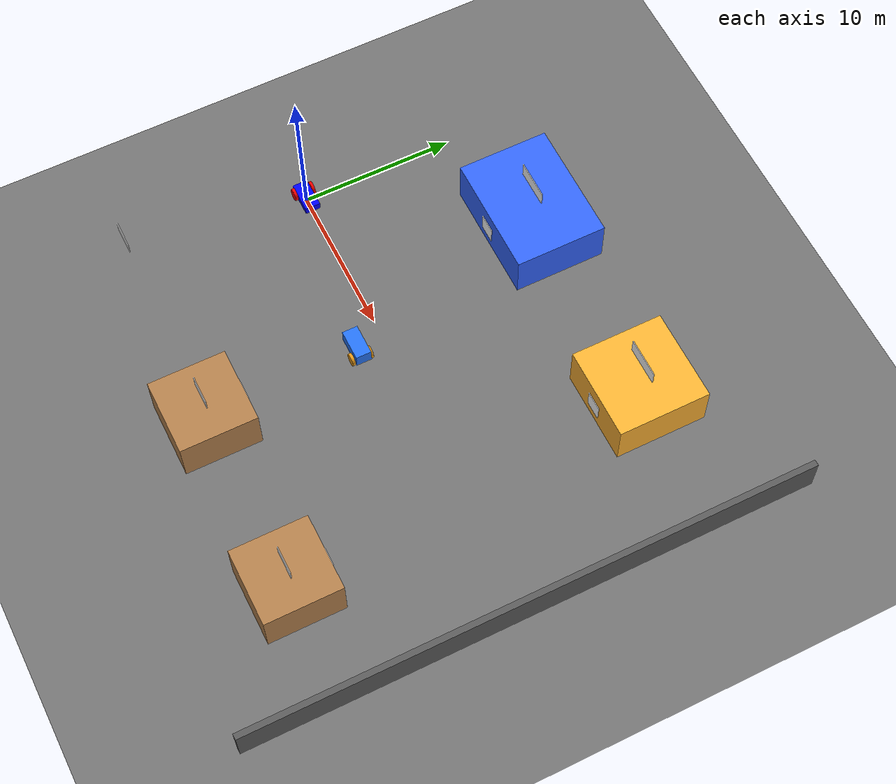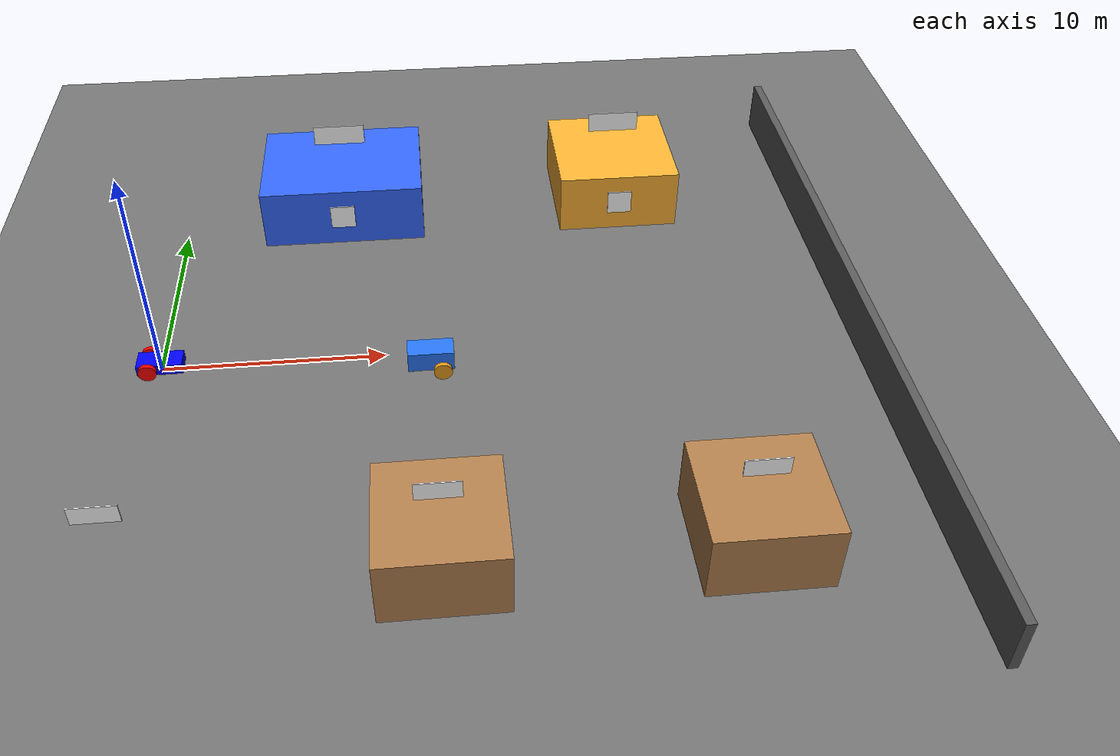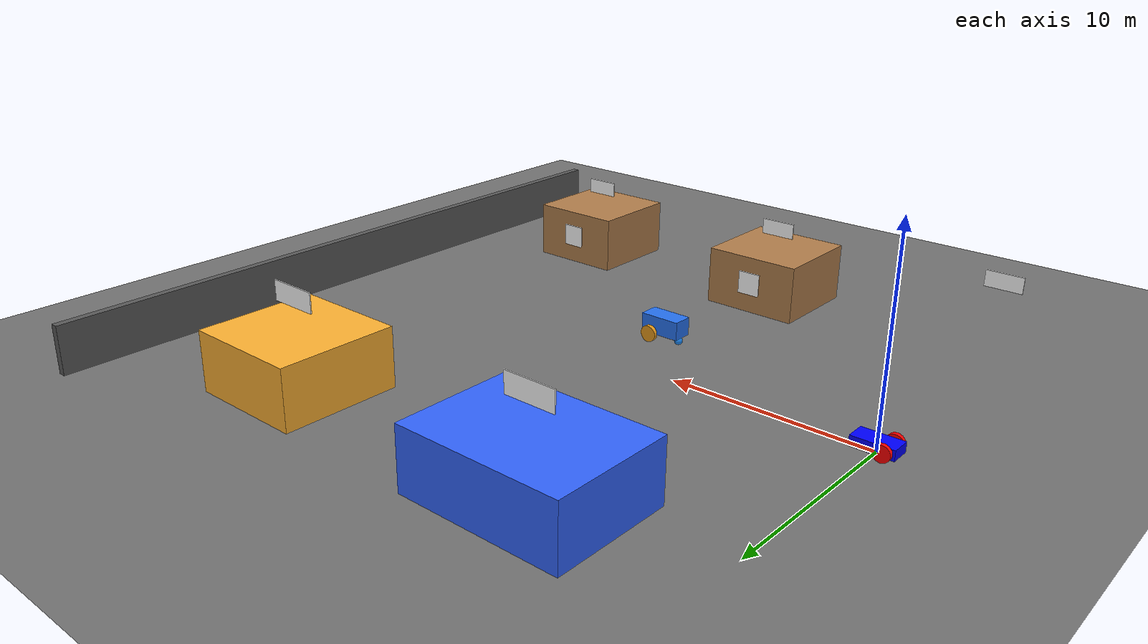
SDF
<sdf version="1.7">
 <world name="town_qr_world">
  <model name="ground_plane">
   <static>true</static>
   <link name="link">
    <collision name="collision">
     <geometry><plane><normal>0 0 1</normal><size>80 80</size></plane></geometry>
    </collision>
    <visual name="visual">
     <geometry><plane><normal>0 0 1</normal><size>80 80</size></plane></geometry>
     <material><ambient>0.45 0.45 0.45 1</ambient><diffuse>0.45 0.45 0.45 1</diffuse></material>
    </visual>
   </link>
  </model>
  <model name="east_wall">
   <static>true</static>
   <pose>31.5 0 1.25 0 0 0</pose>
   <link name="link">
    <collision name="collision"><geometry><box><size>0.4 37 2.5</size></box></geometry></collision>
    <visual name="visual">
     <geometry><box><size>0.4 37 2.5</size></box></geometry>
     <material><ambient>0.35 0.35 0.35 1</ambient><diffuse>0.35 0.35 0.35 1</diffuse></material>
    </visual>
   </link>
  </model>
  <model name="supermarket">
   <static>true</static>
   <pose>8 12 1.5 0 0 0</pose>
   <link name="link">
    <collision name="collision"><geometry><box><size>8 6 3</size></box></geometry></collision>
    <visual name="visual">
     <geometry><box><size>8 6 3</size></box></geometry>
     <material><ambient>0.2 0.4 1.0 1</ambient><diffuse>0.2 0.4 1.0 1</diffuse></material>
    </visual>
   </link>
  </model>
  <model name="restaurant">
   <static>true</static>
   <pose>22 12 1.5 0 0 0</pose>
   <link name="link">
    <collision name="collision"><geometry><box><size>6 6 3</size></box></geometry></collision>
    <visual name="visual">
     <geometry><box><size>6 6 3</size></box></geometry>
     <material><ambient>1.0 0.7 0.2 1</ambient><diffuse>1.0 0.7 0.2 1</diffuse></material>
    </visual>
   </link>
  </model>
  <model name="house_4">
   <static>true</static>
   <pose>12 -12 1.5 0 0 0</pose>
   <link name="link">
    <collision name="collision"><geometry><box><size>5 5 3</size></box></geometry></collision>
    <visual name="visual">
     <geometry><box><size>5 5 3</size></box></geometry>
     <material><ambient>0.7 0.5 0.3 1</ambient><diffuse>0.7 0.5 0.3 1</diffuse></material>
    </visual>
   </link>
  </model>
  <model name="house_5">
   <static>true</static>
   <pose>24 -12 1.5 0 0 0</pose>
   <link name="link">
    <collision name="collision"><geometry><box><size>5 5 3</size></box></geometry></collision>
    <visual name="visual">
     <geometry><box><size>5 5 3</size></box></geometry>
     <material><ambient>0.7 0.5 0.3 1</ambient><diffuse>0.7 0.5 0.3 1</diffuse></material>
    </visual>
   </link>
  </model>
  <model name="qr_supermarket">
   <static>true</static>
   <pose>8 8.9 1.6 0 0 0</pose>
   <link name="link">
    <visual name="qr_visual">
     <geometry><box><size>1.2 0.05 1.2</size></box></geometry>
     <material>
      <ambient>1 1 1 1</ambient>
      <diffuse>1 1 1 1</diffuse>
      <pbr>
       <metal><albedo_map>file:///home/adammanasfi/AMR_PROJECT/qr_codes/supermarket.png</albedo_map></metal>
      </pbr>
     </material>
    </visual>
   </link>
  </model>
  <model name="qr_restaurant">
   <static>true</static>
   <pose>22 8.9 1.6 0 0 0</pose>
   <link name="link">
    <visual name="qr_visual">
     <geometry><box><size>1.2 0.05 1.2</size></box></geometry>
     <material>
      <ambient>1 1 1 1</ambient>
      <diffuse>1 1 1 1</diffuse>
      <pbr>
       <metal><albedo_map>file:///home/adammanasfi/AMR_PROJECT/qr_codes/restaurant.png</albedo_map></metal>
      </pbr>
     </material>
    </visual>
   </link>
  </model>
  <model name="qr_house_4">
   <static>true</static>
   <pose>12 -9.4 1.6 0 0 3.14159</pose>
   <link name="link">
    <visual name="qr_visual">
     <geometry><box><size>1.2 0.05 1.2</size></box></geometry>
     <material>
      <ambient>1 1 1 1</ambient>
      <diffuse>1 1 1 1</diffuse>
      <pbr><metal><albedo_map>file:///home/adammanasfi/AMR_PROJECT/qr_codes/house_4.png</albedo_map></metal></pbr>
     </material>
    </visual>
   </link>
  </model>
  <model name="qr_house_5">
   <static>true</static>
   <pose>24 -9.4 1.6 0 0 3.14159</pose>
   <link name="link">
    <visual name="qr_visual">
     <geometry><box><size>1.2 0.05 1.2</size></box></geometry>
     <material>
      <ambient>1 1 1 1</ambient>
      <diffuse>1 1 1 1</diffuse>
      <pbr><metal><albedo_map>file:///home/adammanasfi/AMR_PROJECT/qr_codes/house_5.png</albedo_map></metal></pbr>
     </material>
    </visual>
   </link>
  </model>
  <model name="vehicle_blue" canonical_link="chassis">
   <frame name="lidar_frame" attached_to="chassis"/>
   <link name="chassis">
    <pose relative_to="__model__">0 0 0.4 0 0 0</pose>
    <inertial>
     <mass>1.14395</mass>
     <inertia>
      <ixx>0.095329</ixx>
      <ixy>0</ixy>
      <ixz>0</ixz>
      <iyy>0.381317</iyy>
      <iyz>0</iyz>
      <izz>0.476646</izz>
     </inertia>
    </inertial>
    <visual name="visual">
     <geometry><box><size>2.0 1.0 0.5</size></box></geometry>
     <material><ambient>0 0 1 1</ambient><diffuse>0 0 1 1</diffuse></material>
    </visual>
    <collision name="collision"><geometry><box><size>2.0 1.0 0.4</size></box></geometry></collision>
    <sensor name="gpu_lidar" type="gpu_lidar">
     <pose>0 0 0.5 0 0 0</pose>
     <topic>scan</topic>
     <update_rate>30</update_rate>
     <ray>
      <scan>
       <horizontal>
        <samples>640</samples>
        <resolution>1</resolution>
        <min_angle>-3.14159</min_angle>
        <max_angle>3.14159</max_angle>
       </horizontal>
       <vertical>
        <samples>1</samples>
        <resolution>1</resolution>
        <min_angle>0</min_angle>
        <max_angle>0</max_angle>
       </vertical>
      </scan>
      <range><min>0.1</min><max>12.0</max><resolution>0.05</resolution></range>
     </ray>
     <always_on>true</always_on>
     <visualize>true</visualize>
    </sensor>
    <sensor name="imu_sensor" type="imu">
     <always_on>true</always_on>
     <update_rate>50</update_rate>
     <visualize>true</visualize>
     <topic>imu</topic>
    </sensor>
    <sensor name="front_cam" type="camera">
     <pose>0.8 0 0.5 0 0 0</pose>
     <topic>front_cam/image</topic>
     <always_on>true</always_on>
     <update_rate>30</update_rate>
     <visualize>true</visualize>
     <camera>
      <horizontal_fov>1.05</horizontal_fov>
      <image><width>640</width><height>480</height><format>R8G8B8</format></image>
      <clip><near>0.1</near><far>50</far></clip>
     </camera>
    </sensor>
   </link>
   <link name="left_wheel">
    <pose relative_to="chassis">-0.5 0.6 0 -1.5707 0 0</pose>
    <inertial>
     <mass>1</mass>
     <inertia><ixx>0.043333</ixx><ixy>0</ixy><ixz>0</ixz><iyy>0.043333</iyy><iyz>0</iyz><izz>0.08</izz></inertia>
    </inertial>
    <visual name="visual">
     <geometry><cylinder><radius>0.4</radius><length>0.2</length></cylinder></geometry>
     <material><ambient>1 0 0 1</ambient><diffuse>1 0 0 1</diffuse></material>
    </visual>
    <collision name="collision">
     <geometry><cylinder><radius>0.4</radius><length>0.2</length></cylinder></geometry>
    </collision>
   </link>
   <link name="right_wheel">
    <pose relative_to="chassis">-0.5 -0.6 0 -1.5707 0 0</pose>
    <inertial>
     <mass>1</mass>
     <inertia><ixx>0.043333</ixx><ixy>0</ixy><ixz>0</ixz><iyy>0.043333</iyy><iyz>0</iyz><izz>0.08</izz></inertia>
    </inertial>
    <visual name="visual">
     <geometry><cylinder><radius>0.4</radius><length>0.2</length></cylinder></geometry>
     <material><ambient>1 0 0 1</ambient><diffuse>1 0 0 1</diffuse></material>
    </visual>
    <collision name="collision">
     <geometry><cylinder><radius>0.4</radius><length>0.2</length></cylinder></geometry>
    </collision>
   </link>
   <frame name="caster_frame" attached_to="chassis"><pose>0.8 0 -0.2 0 0 0</pose></frame>
   <link name="caster">
    <pose relative_to="caster_frame">0 0 0 0 0 0</pose>
    <inertial>
     <mass>1</mass>
     <inertia><ixx>0.016</ixx><ixy>0</ixy><ixz>0</ixz><iyy>0.016</iyy><iyz>0</iyz><izz>0.016</izz></inertia>
    </inertial>
    <visual name="visual">
     <geometry><sphere><radius>0.2</radius></sphere></geometry>
     <material><ambient>0 1 0 1</ambient><diffuse>0 1 0 1</diffuse></material>
    </visual>
    <collision name="collision"><geometry><sphere><radius>0.2</radius></sphere></geometry></collision>
   </link>
   <joint name="left_wheel_joint" type="revolute">
    <parent>chassis</parent>
    <child>left_wheel</child>
    <axis>
     <xyz expressed_in="__model__">0 1 0</xyz>
     <limit><lower>-1.79769e+308</lower><upper>1.79769e+308</upper></limit>
    </axis>
   </joint>
   <joint name="right_wheel_joint" type="revolute">
    <parent>chassis</parent>
    <child>right_wheel</child>
    <axis>
     <xyz expressed_in="__model__">0 1 0</xyz>
     <limit><lower>-1.79769e+308</lower><upper>1.79769e+308</upper></limit>
    </axis>
   </joint>
   <joint name="caster_wheel" type="ball"><parent>chassis</parent><child>caster</child></joint>
   <plugin filename="gz-sim-pose-publisher-system" name="gz::sim::systems::PosePublisher">
    <publish_link_pose>true</publish_link_pose>
    <publish_sensor_pose>true</publish_sensor_pose>
    <publish_nested_model_pose>true</publish_nested_model_pose>
    <use_pose_vector_msg>false</use_pose_vector_msg>
   </plugin>
   <plugin filename="gz-sim-diff-drive-system" name="gz::sim::systems::DiffDrive">
    <left_joint>left_wheel_joint</left_joint>
    <right_joint>right_wheel_joint</right_joint>
    <wheel_separation>1.2</wheel_separation>
    <wheel_radius>0.4</wheel_radius>
    <odom_publish_frequency>10</odom_publish_frequency>
    <topic>cmd_vel</topic>
    <odom_topic>odom</odom_topic>
    <frame_id>odom</frame_id>
    <child_frame_id>vehicle_blue/chassis</child_frame_id>
   </plugin>
  </model>
  <model name="traffic_bot_2" canonical_link="chassis">
   <pose>12 -2 0 0 0 3.14159</pose>
   <link name="chassis">
    <pose relative_to="__model__">0 0 1.2 0 0 0</pose>
    <inertial>
     <mass>1.0</mass>
     <inertia><ixx>0.09</ixx><ixy>0</ixy><ixz>0</ixz><iyy>0.38</iyy><iyz>0</iyz><izz>0.47</izz></inertia>
    </inertial>
    <visual name="visual">
     <pose>0 0 0.45 0 0 0</pose>
     <geometry><box><size>2.0 1.0 0.9</size></box></geometry>
     <material><ambient>0.15 0.45 0.95 1</ambient><diffuse>0.15 0.45 0.95 1</diffuse></material>
    </visual>
    <collision name="collision">
     <pose>0 0 0.4 0 0 0</pose>
     <geometry><box><size>2.0 1.0 0.8</size></box></geometry>
    </collision>
   </link>
   <link name="left_wheel">
    <pose relative_to="chassis">-0.5 0.6 0 -1.5707 0 0</pose>
    <inertial>
     <mass>1</mass>
     <inertia><ixx>0.043333</ixx><ixy>0</ixy><ixz>0</ixz><iyy>0.043333</iyy><iyz>0</iyz><izz>0.08</izz></inertia>
    </inertial>
    <visual name="visual">
     <geometry><cylinder><radius>0.4</radius><length>0.2</length></cylinder></geometry>
     <material><ambient>0.9 0.6 0.1 1</ambient><diffuse>0.9 0.6 0.1 1</diffuse></material>
    </visual>
    <collision name="collision">
     <geometry><cylinder><radius>0.4</radius><length>0.2</length></cylinder></geometry>
    </collision>
   </link>
   <link name="right_wheel">
    <pose relative_to="chassis">-0.5 -0.6 0 -1.5707 0 0</pose>
    <inertial>
     <mass>1</mass>
     <inertia><ixx>0.043333</ixx><ixy>0</ixy><ixz>0</ixz><iyy>0.043333</iyy><iyz>0</iyz><izz>0.08</izz></inertia>
    </inertial>
    <visual name="visual">
     <geometry><cylinder><radius>0.4</radius><length>0.2</length></cylinder></geometry>
     <material><ambient>0.9 0.6 0.1 1</ambient><diffuse>0.9 0.6 0.1 1</diffuse></material>
    </visual>
    <collision name="collision">
     <geometry><cylinder><radius>0.4</radius><length>0.2</length></cylinder></geometry>
    </collision>
   </link>
   <frame name="caster_frame" attached_to="chassis"><pose>0.8 0 -0.2 0 0 0</pose></frame>
   <link name="caster">
    <pose relative_to="caster_frame">0 0 0 0 0 0</pose>
    <inertial>
     <mass>0.5</mass>
     <inertia><ixx>0.016</ixx><ixy>0</ixy><ixz>0</ixz><iyy>0.016</iyy><iyz>0</iyz><izz>0.016</izz></inertia>
    </inertial>
    <visual name="visual">
     <geometry><sphere><radius>0.2</radius></sphere></geometry>
     <material><ambient>0.1 0.5 0.9 1</ambient><diffuse>0.1 0.5 0.9 1</diffuse></material>
    </visual>
    <collision name="collision"><geometry><sphere><radius>0.2</radius></sphere></geometry></collision>
   </link>
   <joint name="left_wheel_joint" type="revolute">
    <parent>chassis</parent>
    <child>left_wheel</child>
    <axis>
     <xyz expressed_in="__model__">0 1 0</xyz>
     <limit><lower>-1.79769e+308</lower><upper>1.79769e+308</upper></limit>
    </axis>
   </joint>
   <joint name="right_wheel_joint" type="revolute">
    <parent>chassis</parent>
    <child>right_wheel</child>
    <axis>
     <xyz expressed_in="__model__">0 1 0</xyz>
     <limit><lower>-1.79769e+308</lower><upper>1.79769e+308</upper></limit>
    </axis>
   </joint>
   <joint name="caster_wheel" type="ball"><parent>chassis</parent><child>caster</child></joint>
   <plugin filename="gz-sim-diff-drive-system" name="gz::sim::systems::DiffDrive">
    <left_joint>left_wheel_joint</left_joint>
    <right_joint>right_wheel_joint</right_joint>
    <wheel_separation>1.2</wheel_separation>
    <wheel_radius>0.4</wheel_radius>
    <odom_publish_frequency>10</odom_publish_frequency>
    <topic>/traffic_bot_2/cmd_vel</topic>
    <odom_topic>/traffic_bot_2/odom</odom_topic>
    <frame_id>traffic_bot_2/odom</frame_id>
    <child_frame_id>traffic_bot_2/chassis</child_frame_id>
   </plugin>
  </model>
  <model name="label_supermarket">
   <static>true</static>
   <pose>8 12 4.5 0 0 0</pose>
   <link name="link">
    <visual name="visual">
     <geometry><box><size>2.5 0.05 1.0</size></box></geometry>
     <material>
      <ambient>1 1 1 1</ambient>
      <diffuse>1 1 1 1</diffuse>
      <pbr>
       <metal><albedo_map>file:///home/adammanasfi/AMR_PROJECT/labels/label_supermarket.png</albedo_map></metal>
      </pbr>
     </material>
    </visual>
   </link>
  </model>
  <model name="label_restaurant">
   <static>true</static>
   <pose>22 12 4.5 0 0 0</pose>
   <link name="link">
    <visual name="visual">
     <geometry><box><size>2.5 0.05 1.0</size></box></geometry>
     <material>
      <ambient>1 1 1 1</ambient>
      <diffuse>1 1 1 1</diffuse>
      <pbr>
       <metal><albedo_map>file:///home/adammanasfi/AMR_PROJECT/labels/label_restaurant.png</albedo_map></metal>
      </pbr>
     </material>
    </visual>
   </link>
  </model>
  <model name="label_house_3">
   <static>true</static>
   <pose>0 -12 4.0 0 0 0</pose>
   <link name="link">
    <visual name="visual">
     <geometry><box><size>1.8 0.05 0.8</size></box></geometry>
     <material>
      <ambient>1 1 1 1</ambient>
      <diffuse>1 1 1 1</diffuse>
      <pbr>
       <metal><albedo_map>file:///home/adammanasfi/AMR_PROJECT/labels/label_house_3.png</albedo_map></metal>
      </pbr>
     </material>
    </visual>
   </link>
  </model>
  <model name="label_house_4">
   <static>true</static>
   <pose>12 -12 4.0 0 0 0</pose>
   <link name="link">
    <visual name="visual">
     <geometry><box><size>1.8 0.05 0.8</size></box></geometry>
     <material>
      <ambient>1 1 1 1</ambient>
      <diffuse>1 1 1 1</diffuse>
      <pbr>
       <metal><albedo_map>file:///home/adammanasfi/AMR_PROJECT/labels/label_house_4.png</albedo_map></metal>
      </pbr>
     </material>
    </visual>
   </link>
  </model>
  <model name="label_house_5">
   <static>true</static>
   <pose>24 -12 4.0 0 0 0</pose>
   <link name="link">
    <visual name="visual">
     <geometry><box><size>1.8 0.05 0.8</size></box></geometry>
     <material>
      <ambient>1 1 1 1</ambient>
      <diffuse>1 1 1 1</diffuse>
      <pbr>
       <metal><albedo_map>file:///home/adammanasfi/AMR_PROJECT/labels/label_house_5.png</albedo_map></metal>
      </pbr>
     </material>
    </visual>
   </link>
  </model>
 </world>
</sdf>
